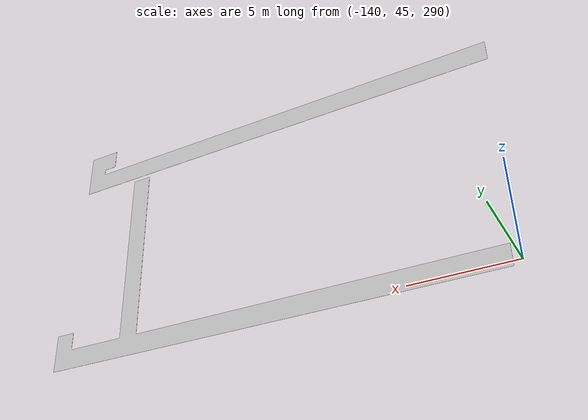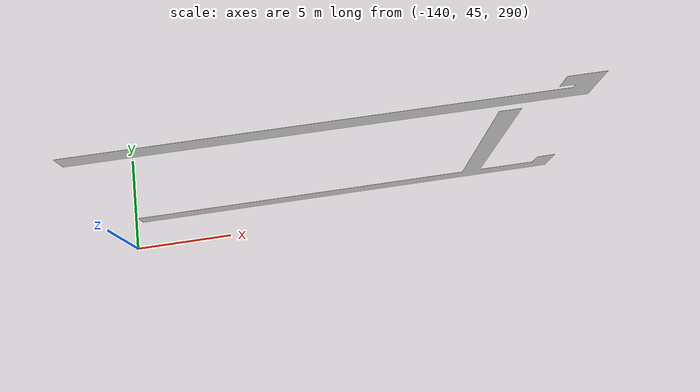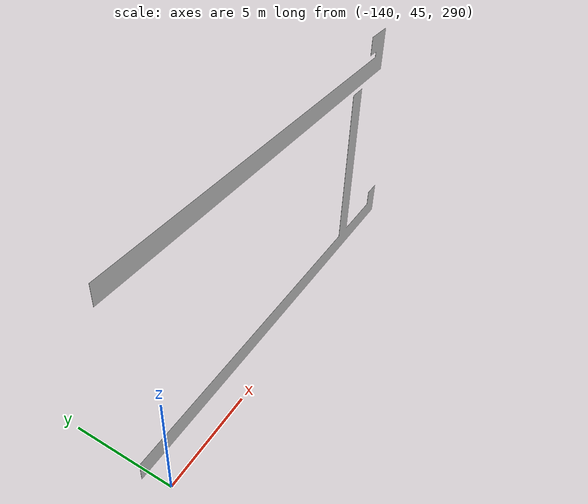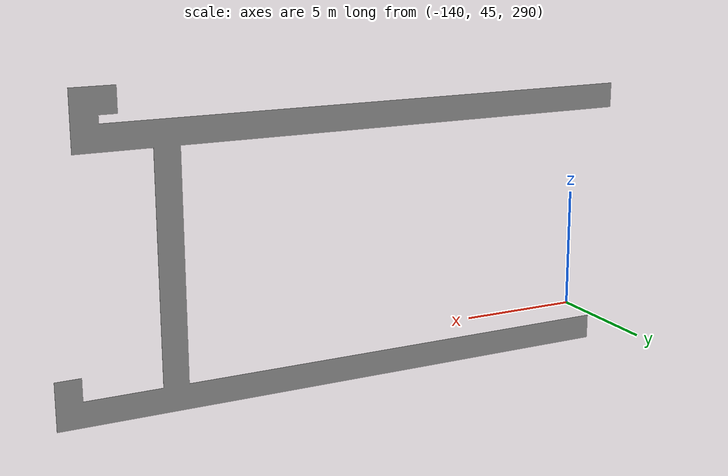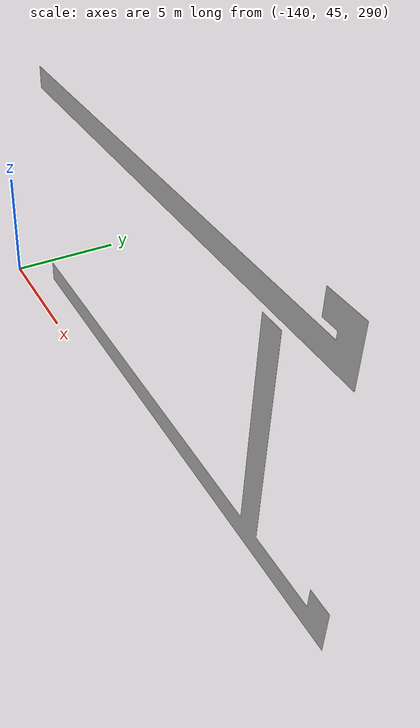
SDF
<?xml version='1.0'?>
<sdf version='1.7'>
    <model name='huldra-medium-walkway'>
        <static>true</static>
        <link name='link0'>
            <visual name="visual0">
                <pose>0 0 0 0 0 0</pose>
                <geometry>
                    <mesh>
                        <uri>model://huldra-models/huldra-medium-walkway/meshes/huldra-medium-walkway.obj</uri>
                    </mesh>
                </geometry>
            </visual>
        </link>
    </model>
</sdf>
